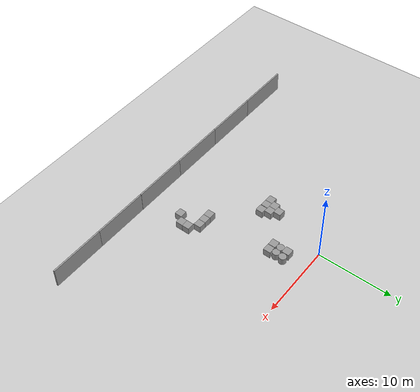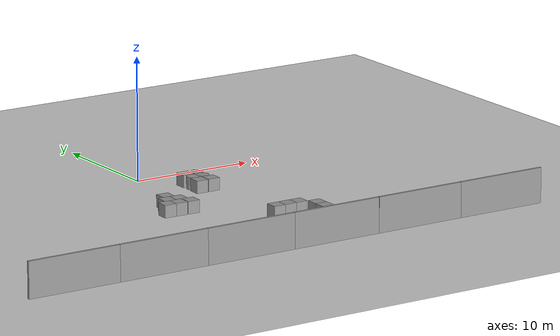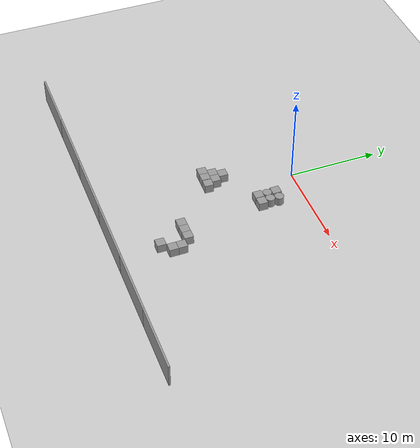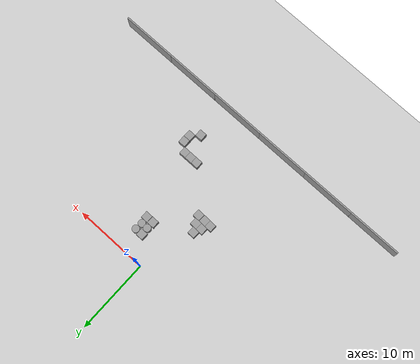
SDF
<sdf version="1.6">
 <world name="default">
  <model name="ground_plane">
   <static>1</static>
   <link name="link">
    <collision name="collision">
     <geometry><plane><normal>0 0 1</normal><size>100 100</size></plane></geometry>
     <surface><friction><ode><mu>100</mu><mu2>50</mu2></ode></friction></surface>
    </collision>
    <visual name="visual">
     <cast_shadows>0</cast_shadows>
     <geometry><plane><normal>0 0 1</normal><size>100 100</size></plane></geometry>
     <material>
      <script><uri>file://media/materials/scripts/gazebo.material</uri><name>Gazebo/Grey</name></script>
     </material>
    </visual>
   </link>
  </model>
  <model name="6walls_0">
   <model name="grey_wall">
    <static>1</static>
    <link name="link">
     <pose>0 0 1.4 0 -0 0</pose>
     <collision name="collision"><geometry><box><size>7.5 0.2 2.8</size></box></geometry></collision>
     <visual name="visual">
      <cast_shadows>0</cast_shadows>
      <geometry><box><size>7.5 0.2 2.8</size></box></geometry>
      <material>
       <script>
        <uri>model://grey_wall/materials/scripts</uri>
        <uri>model://grey_wall/materials/textures</uri>
        <name>vrc/grey_wall</name>
       </script>
      </material>
     </visual>
    </link>
    <pose>-18.6834 0 0 0 -0 0</pose>
   </model>
   <model name="grey_wall_0">
    <static>1</static>
    <link name="link">
     <pose>0 0 1.4 0 -0 0</pose>
     <collision name="collision"><geometry><box><size>7.5 0.2 2.8</size></box></geometry></collision>
     <visual name="visual">
      <cast_shadows>0</cast_shadows>
      <geometry><box><size>7.5 0.2 2.8</size></box></geometry>
      <material>
       <script>
        <uri>model://grey_wall/materials/scripts</uri>
        <uri>model://grey_wall/materials/textures</uri>
        <name>vrc/grey_wall</name>
       </script>
      </material>
     </visual>
    </link>
    <pose>-11.2658 0 0 0 -0 0</pose>
   </model>
   <model name="grey_wall_1">
    <static>1</static>
    <link name="link">
     <pose>0 0 1.4 0 -0 0</pose>
     <collision name="collision"><geometry><box><size>7.5 0.2 2.8</size></box></geometry></collision>
     <visual name="visual">
      <cast_shadows>0</cast_shadows>
      <geometry><box><size>7.5 0.2 2.8</size></box></geometry>
      <material>
       <script>
        <uri>model://grey_wall/materials/scripts</uri>
        <uri>model://grey_wall/materials/textures</uri>
        <name>vrc/grey_wall</name>
       </script>
      </material>
     </visual>
    </link>
    <pose>-3.76669 0 0 0 -0 0</pose>
   </model>
   <model name="grey_wall_2">
    <static>1</static>
    <link name="link">
     <pose>0 0 1.4 0 -0 0</pose>
     <collision name="collision"><geometry><box><size>7.5 0.2 2.8</size></box></geometry></collision>
     <visual name="visual">
      <cast_shadows>0</cast_shadows>
      <geometry><box><size>7.5 0.2 2.8</size></box></geometry>
      <material>
       <script>
        <uri>model://grey_wall/materials/scripts</uri>
        <uri>model://grey_wall/materials/textures</uri>
        <name>vrc/grey_wall</name>
       </script>
      </material>
     </visual>
    </link>
    <pose>3.73421 0 0 0 -0 0</pose>
   </model>
   <model name="grey_wall_3">
    <static>1</static>
    <link name="link">
     <pose>0 0 1.4 0 -0 0</pose>
     <collision name="collision"><geometry><box><size>7.5 0.2 2.8</size></box></geometry></collision>
     <visual name="visual">
      <cast_shadows>0</cast_shadows>
      <geometry><box><size>7.5 0.2 2.8</size></box></geometry>
      <material>
       <script>
        <uri>model://grey_wall/materials/scripts</uri>
        <uri>model://grey_wall/materials/textures</uri>
        <name>vrc/grey_wall</name>
       </script>
      </material>
     </visual>
    </link>
    <pose>11.2475 0 0 0 -0 0</pose>
   </model>
   <model name="grey_wall_4">
    <static>1</static>
    <link name="link">
     <pose>0 0 1.4 0 -0 0</pose>
     <collision name="collision"><geometry><box><size>7.5 0.2 2.8</size></box></geometry></collision>
     <visual name="visual">
      <cast_shadows>0</cast_shadows>
      <geometry><box><size>7.5 0.2 2.8</size></box></geometry>
      <material>
       <script>
        <uri>model://grey_wall/materials/scripts</uri>
        <uri>model://grey_wall/materials/textures</uri>
        <name>vrc/grey_wall</name>
       </script>
      </material>
     </visual>
    </link>
    <pose>18.7342 0 0 0 -0 0</pose>
   </model>
   <static>0</static>
   <pose>0 -22 0 0 -0 0</pose>
  </model>
  <model name="machine3">
   <link name="link_13">
    <pose>-0.503159 1 0 0 -0 0</pose>
    <inertial>
     <mass>1</mass>
     <inertia>
      <ixx>0.166667</ixx>
      <ixy>0</ixy>
      <ixz>0</ixz>
      <iyy>0.166667</iyy>
      <iyz>0</iyz>
      <izz>0.166667</izz>
     </inertia>
    </inertial>
    <visual name="visual">
     <geometry><box><size>1 1 1</size></box></geometry>
     <material>
      <lighting>1</lighting>
      <script><uri>file://media/materials/scripts/gazebo.material</uri><name>Gazebo/Grey</name></script>
      <ambient>0.3 0.3 0.3 1</ambient>
      <diffuse>0.7 0.7 0.7 1</diffuse>
      <specular>0.01 0.01 0.01 1</specular>
      <emissive>0 0 0 1</emissive>
     </material>
    </visual>
    <collision name="collision">
     <geometry><box><size>1 1 1</size></box></geometry>
     <surface>
      <friction>
       <ode><mu>1</mu><mu2>1</mu2><fdir1>0 0 0</fdir1><slip1>0</slip1><slip2>0</slip2></ode>
       <torsional>
        <coefficient>1</coefficient>
        <patch_radius>0</patch_radius>
        <surface_radius>0</surface_radius>
        <use_patch_radius>1</use_patch_radius>
        <ode><slip>0</slip></ode>
       </torsional>
      </friction>
      <bounce><restitution_coefficient>0</restitution_coefficient><threshold>1e+06</threshold></bounce>
      <contact>
       <collide_without_contact>0</collide_without_contact>
       <collide_without_contact_bitmask>1</collide_without_contact_bitmask>
       <collide_bitmask>1</collide_bitmask>
       <ode>
        <soft_cfm>0</soft_cfm>
        <soft_erp>0.2</soft_erp>
        <kp>1e+13</kp>
        <kd>1</kd>
        <max_vel>0.01</max_vel>
        <min_depth>0</min_depth>
       </ode>
       <bullet>
        <split_impulse>1</split_impulse>
        <split_impulse_penetration_threshold>-0.01</split_impulse_penetration_threshold>
        <soft_cfm>0</soft_cfm>
        <soft_erp>0.2</soft_erp>
        <kp>1e+13</kp>
        <kd>1</kd>
       </bullet>
      </contact>
     </surface>
    </collision>
   </link>
   <link name="link_14">
    <pose>0.524915 1 0 0 -0 0</pose>
    <inertial>
     <mass>1</mass>
     <inertia><ixx>0.145833</ixx><ixy>0</ixy><ixz>0</ixz><iyy>0.145833</iyy><iyz>0</iyz><izz>0.125</izz></inertia>
    </inertial>
    <visual name="visual">
     <geometry><cylinder><radius>0.5</radius><length>1</length></cylinder></geometry>
     <material>
      <lighting>1</lighting>
      <script><uri>file://media/materials/scripts/gazebo.material</uri><name>Gazebo/Grey</name></script>
      <ambient>0.3 0.3 0.3 1</ambient>
      <diffuse>0.7 0.7 0.7 1</diffuse>
      <specular>0.01 0.01 0.01 1</specular>
      <emissive>0 0 0 1</emissive>
     </material>
    </visual>
    <collision name="collision">
     <geometry><cylinder><radius>0.5</radius><length>1</length></cylinder></geometry>
     <surface>
      <friction>
       <ode><mu>1</mu><mu2>1</mu2><fdir1>0 0 0</fdir1><slip1>0</slip1><slip2>0</slip2></ode>
       <torsional>
        <coefficient>1</coefficient>
        <patch_radius>0</patch_radius>
        <surface_radius>0</surface_radius>
        <use_patch_radius>1</use_patch_radius>
        <ode><slip>0</slip></ode>
       </torsional>
      </friction>
      <bounce><restitution_coefficient>0</restitution_coefficient><threshold>1e+06</threshold></bounce>
      <contact>
       <collide_without_contact>0</collide_without_contact>
       <collide_without_contact_bitmask>1</collide_without_contact_bitmask>
       <collide_bitmask>1</collide_bitmask>
       <ode>
        <soft_cfm>0</soft_cfm>
        <soft_erp>0.2</soft_erp>
        <kp>1e+13</kp>
        <kd>1</kd>
        <max_vel>0.01</max_vel>
        <min_depth>0</min_depth>
       </ode>
       <bullet>
        <split_impulse>1</split_impulse>
        <split_impulse_penetration_threshold>-0.01</split_impulse_penetration_threshold>
        <soft_cfm>0</soft_cfm>
        <soft_erp>0.2</soft_erp>
        <kp>1e+13</kp>
        <kd>1</kd>
       </bullet>
      </contact>
     </surface>
    </collision>
   </link>
   <link name="link_15">
    <pose>0.434688 0 0 0 -0 0</pose>
    <inertial>
     <mass>1</mass>
     <inertia><ixx>0.145833</ixx><ixy>0</ixy><ixz>0</ixz><iyy>0.145833</iyy><iyz>0</iyz><izz>0.125</izz></inertia>
    </inertial>
    <visual name="visual">
     <geometry><cylinder><radius>0.5</radius><length>1</length></cylinder></geometry>
     <material>
      <lighting>1</lighting>
      <script><uri>file://media/materials/scripts/gazebo.material</uri><name>Gazebo/Grey</name></script>
      <ambient>0.3 0.3 0.3 1</ambient>
      <diffuse>0.7 0.7 0.7 1</diffuse>
      <specular>0.01 0.01 0.01 1</specular>
      <emissive>0 0 0 1</emissive>
     </material>
    </visual>
    <collision name="collision">
     <geometry><cylinder><radius>0.5</radius><length>1</length></cylinder></geometry>
     <surface>
      <friction>
       <ode><mu>1</mu><mu2>1</mu2><fdir1>0 0 0</fdir1><slip1>0</slip1><slip2>0</slip2></ode>
       <torsional>
        <coefficient>1</coefficient>
        <patch_radius>0</patch_radius>
        <surface_radius>0</surface_radius>
        <use_patch_radius>1</use_patch_radius>
        <ode><slip>0</slip></ode>
       </torsional>
      </friction>
      <bounce><restitution_coefficient>0</restitution_coefficient><threshold>1e+06</threshold></bounce>
      <contact>
       <collide_without_contact>0</collide_without_contact>
       <collide_without_contact_bitmask>1</collide_without_contact_bitmask>
       <collide_bitmask>1</collide_bitmask>
       <ode>
        <soft_cfm>0</soft_cfm>
        <soft_erp>0.2</soft_erp>
        <kp>1e+13</kp>
        <kd>1</kd>
        <max_vel>0.01</max_vel>
        <min_depth>0</min_depth>
       </ode>
       <bullet>
        <split_impulse>1</split_impulse>
        <split_impulse_penetration_threshold>-0.01</split_impulse_penetration_threshold>
        <soft_cfm>0</soft_cfm>
        <soft_erp>0.2</soft_erp>
        <kp>1e+13</kp>
        <kd>1</kd>
       </bullet>
      </contact>
     </surface>
    </collision>
   </link>
   <link name="link_16">
    <pose>-0.471074 0 0 0 -0 0</pose>
    <inertial>
     <mass>1</mass>
     <inertia><ixx>0.145833</ixx><ixy>0</ixy><ixz>0</ixz><iyy>0.145833</iyy><iyz>0</iyz><izz>0.125</izz></inertia>
    </inertial>
    <visual name="visual">
     <geometry><cylinder><radius>0.5</radius><length>1</length></cylinder></geometry>
     <material>
      <lighting>1</lighting>
      <script><uri>file://media/materials/scripts/gazebo.material</uri><name>Gazebo/Grey</name></script>
      <ambient>0.3 0.3 0.3 1</ambient>
      <diffuse>0.7 0.7 0.7 1</diffuse>
      <specular>0.01 0.01 0.01 1</specular>
      <emissive>0 0 0 1</emissive>
     </material>
    </visual>
    <collision name="collision">
     <geometry><cylinder><radius>0.5</radius><length>1</length></cylinder></geometry>
     <surface>
      <friction>
       <ode><mu>1</mu><mu2>1</mu2><fdir1>0 0 0</fdir1><slip1>0</slip1><slip2>0</slip2></ode>
       <torsional>
        <coefficient>1</coefficient>
        <patch_radius>0</patch_radius>
        <surface_radius>0</surface_radius>
        <use_patch_radius>1</use_patch_radius>
        <ode><slip>0</slip></ode>
       </torsional>
      </friction>
      <bounce><restitution_coefficient>0</restitution_coefficient><threshold>1e+06</threshold></bounce>
      <contact>
       <collide_without_contact>0</collide_without_contact>
       <collide_without_contact_bitmask>1</collide_without_contact_bitmask>
       <collide_bitmask>1</collide_bitmask>
       <ode>
        <soft_cfm>0</soft_cfm>
        <soft_erp>0.2</soft_erp>
        <kp>1e+13</kp>
        <kd>1</kd>
        <max_vel>0.01</max_vel>
        <min_depth>0</min_depth>
       </ode>
       <bullet>
        <split_impulse>1</split_impulse>
        <split_impulse_penetration_threshold>-0.01</split_impulse_penetration_threshold>
        <soft_cfm>0</soft_cfm>
        <soft_erp>0.2</soft_erp>
        <kp>1e+13</kp>
        <kd>1</kd>
       </bullet>
      </contact>
     </surface>
    </collision>
   </link>
   <link name="link_17">
    <pose>-0.50937 -1 0 0 -0 0</pose>
    <inertial>
     <mass>1</mass>
     <inertia>
      <ixx>0.166667</ixx>
      <ixy>0</ixy>
      <ixz>0</ixz>
      <iyy>0.166667</iyy>
      <iyz>0</iyz>
      <izz>0.166667</izz>
     </inertia>
    </inertial>
    <visual name="visual">
     <geometry><box><size>1 1 1</size></box></geometry>
     <material>
      <lighting>1</lighting>
      <script><uri>file://media/materials/scripts/gazebo.material</uri><name>Gazebo/Grey</name></script>
      <ambient>0.3 0.3 0.3 1</ambient>
      <diffuse>0.7 0.7 0.7 1</diffuse>
      <specular>0.01 0.01 0.01 1</specular>
      <emissive>0 0 0 1</emissive>
     </material>
    </visual>
    <collision name="collision">
     <geometry><box><size>1 1 1</size></box></geometry>
     <surface>
      <friction>
       <ode><mu>1</mu><mu2>1</mu2><fdir1>0 0 0</fdir1><slip1>0</slip1><slip2>0</slip2></ode>
       <torsional>
        <coefficient>1</coefficient>
        <patch_radius>0</patch_radius>
        <surface_radius>0</surface_radius>
        <use_patch_radius>1</use_patch_radius>
        <ode><slip>0</slip></ode>
       </torsional>
      </friction>
      <bounce><restitution_coefficient>0</restitution_coefficient><threshold>1e+06</threshold></bounce>
      <contact>
       <collide_without_contact>0</collide_without_contact>
       <collide_without_contact_bitmask>1</collide_without_contact_bitmask>
       <collide_bitmask>1</collide_bitmask>
       <ode>
        <soft_cfm>0</soft_cfm>
        <soft_erp>0.2</soft_erp>
        <kp>1e+13</kp>
        <kd>1</kd>
        <max_vel>0.01</max_vel>
        <min_depth>0</min_depth>
       </ode>
       <bullet>
        <split_impulse>1</split_impulse>
        <split_impulse_penetration_threshold>-0.01</split_impulse_penetration_threshold>
        <soft_cfm>0</soft_cfm>
        <soft_erp>0.2</soft_erp>
        <kp>1e+13</kp>
        <kd>1</kd>
       </bullet>
      </contact>
     </surface>
    </collision>
   </link>
   <link name="link_18">
    <pose>0.524008 -1 0 0 -0 0</pose>
    <inertial>
     <mass>1</mass>
     <inertia>
      <ixx>0.166667</ixx>
      <ixy>0</ixy>
      <ixz>0</ixz>
      <iyy>0.166667</iyy>
      <iyz>0</iyz>
      <izz>0.166667</izz>
     </inertia>
    </inertial>
    <visual name="visual">
     <geometry><box><size>1 1 1</size></box></geometry>
     <material>
      <lighting>1</lighting>
      <script><uri>file://media/materials/scripts/gazebo.material</uri><name>Gazebo/Grey</name></script>
      <ambient>0.3 0.3 0.3 1</ambient>
      <diffuse>0.7 0.7 0.7 1</diffuse>
      <specular>0.01 0.01 0.01 1</specular>
      <emissive>0 0 0 1</emissive>
     </material>
    </visual>
    <collision name="collision">
     <geometry><box><size>1 1 1</size></box></geometry>
     <surface>
      <friction>
       <ode><mu>1</mu><mu2>1</mu2><fdir1>0 0 0</fdir1><slip1>0</slip1><slip2>0</slip2></ode>
       <torsional>
        <coefficient>1</coefficient>
        <patch_radius>0</patch_radius>
        <surface_radius>0</surface_radius>
        <use_patch_radius>1</use_patch_radius>
        <ode><slip>0</slip></ode>
       </torsional>
      </friction>
      <bounce><restitution_coefficient>0</restitution_coefficient><threshold>1e+06</threshold></bounce>
      <contact>
       <collide_without_contact>0</collide_without_contact>
       <collide_without_contact_bitmask>1</collide_without_contact_bitmask>
       <collide_bitmask>1</collide_bitmask>
       <ode>
        <soft_cfm>0</soft_cfm>
        <soft_erp>0.2</soft_erp>
        <kp>1e+13</kp>
        <kd>1</kd>
        <max_vel>0.01</max_vel>
        <min_depth>0</min_depth>
       </ode>
       <bullet>
        <split_impulse>1</split_impulse>
        <split_impulse_penetration_threshold>-0.01</split_impulse_penetration_threshold>
        <soft_cfm>0</soft_cfm>
        <soft_erp>0.2</soft_erp>
        <kp>1e+13</kp>
        <kd>1</kd>
       </bullet>
      </contact>
     </surface>
    </collision>
   </link>
   <static>0</static>
   <pose>2.98799 -4 0.5 0 -0 0</pose>
  </model>
  <model name="machine1_clone">
   <link name="link_0">
    <pose>0.666667 -1.0048 0 0 -0 0</pose>
    <inertial>
     <mass>1</mass>
     <inertia>
      <ixx>0.166667</ixx>
      <ixy>0</ixy>
      <ixz>0</ixz>
      <iyy>0.166667</iyy>
      <iyz>0</iyz>
      <izz>0.166667</izz>
     </inertia>
    </inertial>
    <visual name="visual">
     <geometry><box><size>1 1 1</size></box></geometry>
     <material>
      <lighting>1</lighting>
      <script><uri>file://media/materials/scripts/gazebo.material</uri><name>Gazebo/Grey</name></script>
      <ambient>0.3 0.3 0.3 1</ambient>
      <diffuse>0.7 0.7 0.7 1</diffuse>
      <specular>0.01 0.01 0.01 1</specular>
      <emissive>0 0 0 1</emissive>
     </material>
    </visual>
    <collision name="collision">
     <geometry><box><size>1 1 1</size></box></geometry>
     <surface>
      <friction>
       <ode><mu>1</mu><mu2>1</mu2><fdir1>0 0 0</fdir1><slip1>0</slip1><slip2>0</slip2></ode>
       <torsional>
        <coefficient>1</coefficient>
        <patch_radius>0</patch_radius>
        <surface_radius>0</surface_radius>
        <use_patch_radius>1</use_patch_radius>
        <ode><slip>0</slip></ode>
       </torsional>
      </friction>
      <bounce><restitution_coefficient>0</restitution_coefficient><threshold>1e+06</threshold></bounce>
      <contact>
       <collide_without_contact>0</collide_without_contact>
       <collide_without_contact_bitmask>1</collide_without_contact_bitmask>
       <collide_bitmask>1</collide_bitmask>
       <ode>
        <soft_cfm>0</soft_cfm>
        <soft_erp>0.2</soft_erp>
        <kp>1e+13</kp>
        <kd>1</kd>
        <max_vel>0.01</max_vel>
        <min_depth>0</min_depth>
       </ode>
       <bullet>
        <split_impulse>1</split_impulse>
        <split_impulse_penetration_threshold>-0.01</split_impulse_penetration_threshold>
        <soft_cfm>0</soft_cfm>
        <soft_erp>0.2</soft_erp>
        <kp>1e+13</kp>
        <kd>1</kd>
       </bullet>
      </contact>
     </surface>
    </collision>
   </link>
   <link name="link_1">
    <pose>0.666667 -0.036067 0 0 -0 0</pose>
    <inertial>
     <mass>1</mass>
     <inertia>
      <ixx>0.166667</ixx>
      <ixy>0</ixy>
      <ixz>0</ixz>
      <iyy>0.166667</iyy>
      <iyz>0</iyz>
      <izz>0.166667</izz>
     </inertia>
    </inertial>
    <visual name="visual">
     <geometry><box><size>1 1 1</size></box></geometry>
     <material>
      <lighting>1</lighting>
      <script><uri>file://media/materials/scripts/gazebo.material</uri><name>Gazebo/Grey</name></script>
      <ambient>0.3 0.3 0.3 1</ambient>
      <diffuse>0.7 0.7 0.7 1</diffuse>
      <specular>0.01 0.01 0.01 1</specular>
      <emissive>0 0 0 1</emissive>
     </material>
    </visual>
    <collision name="collision">
     <geometry><box><size>1 1 1</size></box></geometry>
     <surface>
      <friction>
       <ode><mu>1</mu><mu2>1</mu2><fdir1>0 0 0</fdir1><slip1>0</slip1><slip2>0</slip2></ode>
       <torsional>
        <coefficient>1</coefficient>
        <patch_radius>0</patch_radius>
        <surface_radius>0</surface_radius>
        <use_patch_radius>1</use_patch_radius>
        <ode><slip>0</slip></ode>
       </torsional>
      </friction>
      <bounce><restitution_coefficient>0</restitution_coefficient><threshold>1e+06</threshold></bounce>
      <contact>
       <collide_without_contact>0</collide_without_contact>
       <collide_without_contact_bitmask>1</collide_without_contact_bitmask>
       <collide_bitmask>1</collide_bitmask>
       <ode>
        <soft_cfm>0</soft_cfm>
        <soft_erp>0.2</soft_erp>
        <kp>1e+13</kp>
        <kd>1</kd>
        <max_vel>0.01</max_vel>
        <min_depth>0</min_depth>
       </ode>
       <bullet>
        <split_impulse>1</split_impulse>
        <split_impulse_penetration_threshold>-0.01</split_impulse_penetration_threshold>
        <soft_cfm>0</soft_cfm>
        <soft_erp>0.2</soft_erp>
        <kp>1e+13</kp>
        <kd>1</kd>
       </bullet>
      </contact>
     </surface>
    </collision>
   </link>
   <link name="link_2">
    <pose>0.666667 1.00722 0 0 -0 0</pose>
    <inertial>
     <mass>1</mass>
     <inertia>
      <ixx>0.166667</ixx>
      <ixy>0</ixy>
      <ixz>0</ixz>
      <iyy>0.166667</iyy>
      <iyz>0</iyz>
      <izz>0.166667</izz>
     </inertia>
    </inertial>
    <visual name="visual">
     <geometry><box><size>1 1 1</size></box></geometry>
     <material>
      <lighting>1</lighting>
      <script><uri>file://media/materials/scripts/gazebo.material</uri><name>Gazebo/Grey</name></script>
      <ambient>0.3 0.3 0.3 1</ambient>
      <diffuse>0.7 0.7 0.7 1</diffuse>
      <specular>0.01 0.01 0.01 1</specular>
      <emissive>0 0 0 1</emissive>
     </material>
    </visual>
    <collision name="collision">
     <geometry><box><size>1 1 1</size></box></geometry>
     <surface>
      <friction>
       <ode><mu>1</mu><mu2>1</mu2><fdir1>0 0 0</fdir1><slip1>0</slip1><slip2>0</slip2></ode>
       <torsional>
        <coefficient>1</coefficient>
        <patch_radius>0</patch_radius>
        <surface_radius>0</surface_radius>
        <use_patch_radius>1</use_patch_radius>
        <ode><slip>0</slip></ode>
       </torsional>
      </friction>
      <bounce><restitution_coefficient>0</restitution_coefficient><threshold>1e+06</threshold></bounce>
      <contact>
       <collide_without_contact>0</collide_without_contact>
       <collide_without_contact_bitmask>1</collide_without_contact_bitmask>
       <collide_bitmask>1</collide_bitmask>
       <ode>
        <soft_cfm>0</soft_cfm>
        <soft_erp>0.2</soft_erp>
        <kp>1e+13</kp>
        <kd>1</kd>
        <max_vel>0.01</max_vel>
        <min_depth>0</min_depth>
       </ode>
       <bullet>
        <split_impulse>1</split_impulse>
        <split_impulse_penetration_threshold>-0.01</split_impulse_penetration_threshold>
        <soft_cfm>0</soft_cfm>
        <soft_erp>0.2</soft_erp>
        <kp>1e+13</kp>
        <kd>1</kd>
       </bullet>
      </contact>
     </surface>
    </collision>
   </link>
   <link name="link_3">
    <pose>-0.333333 0.53488 0 0 -0 0</pose>
    <inertial>
     <mass>1</mass>
     <inertia>
      <ixx>0.166667</ixx>
      <ixy>0</ixy>
      <ixz>0</ixz>
      <iyy>0.166667</iyy>
      <iyz>0</iyz>
      <izz>0.166667</izz>
     </inertia>
    </inertial>
    <visual name="visual">
     <geometry><box><size>1 1 1</size></box></geometry>
     <material>
      <lighting>1</lighting>
      <script><uri>file://media/materials/scripts/gazebo.material</uri><name>Gazebo/Grey</name></script>
      <ambient>0.3 0.3 0.3 1</ambient>
      <diffuse>0.7 0.7 0.7 1</diffuse>
      <specular>0.01 0.01 0.01 1</specular>
      <emissive>0 0 0 1</emissive>
     </material>
    </visual>
    <collision name="collision">
     <geometry><box><size>1 1 1</size></box></geometry>
     <surface>
      <friction>
       <ode><mu>1</mu><mu2>1</mu2><fdir1>0 0 0</fdir1><slip1>0</slip1><slip2>0</slip2></ode>
       <torsional>
        <coefficient>1</coefficient>
        <patch_radius>0</patch_radius>
        <surface_radius>0</surface_radius>
        <use_patch_radius>1</use_patch_radius>
        <ode><slip>0</slip></ode>
       </torsional>
      </friction>
      <bounce><restitution_coefficient>0</restitution_coefficient><threshold>1e+06</threshold></bounce>
      <contact>
       <collide_without_contact>0</collide_without_contact>
       <collide_without_contact_bitmask>1</collide_without_contact_bitmask>
       <collide_bitmask>1</collide_bitmask>
       <ode>
        <soft_cfm>0</soft_cfm>
        <soft_erp>0.2</soft_erp>
        <kp>1e+13</kp>
        <kd>1</kd>
        <max_vel>0.01</max_vel>
        <min_depth>0</min_depth>
       </ode>
       <bullet>
        <split_impulse>1</split_impulse>
        <split_impulse_penetration_threshold>-0.01</split_impulse_penetration_threshold>
        <soft_cfm>0</soft_cfm>
        <soft_erp>0.2</soft_erp>
        <kp>1e+13</kp>
        <kd>1</kd>
       </bullet>
      </contact>
     </surface>
    </collision>
   </link>
   <link name="link_4">
    <pose>-0.333333 -0.46512 0 0 -0 0</pose>
    <inertial>
     <mass>1</mass>
     <inertia>
      <ixx>0.166667</ixx>
      <ixy>0</ixy>
      <ixz>0</ixz>
      <iyy>0.166667</iyy>
      <iyz>0</iyz>
      <izz>0.166667</izz>
     </inertia>
    </inertial>
    <visual name="visual">
     <geometry><box><size>1 1 1</size></box></geometry>
     <material>
      <lighting>1</lighting>
      <script><uri>file://media/materials/scripts/gazebo.material</uri><name>Gazebo/Grey</name></script>
      <ambient>0.3 0.3 0.3 1</ambient>
      <diffuse>0.7 0.7 0.7 1</diffuse>
      <specular>0.01 0.01 0.01 1</specular>
      <emissive>0 0 0 1</emissive>
     </material>
    </visual>
    <collision name="collision">
     <geometry><box><size>1 1 1</size></box></geometry>
     <surface>
      <friction>
       <ode><mu>1</mu><mu2>1</mu2><fdir1>0 0 0</fdir1><slip1>0</slip1><slip2>0</slip2></ode>
       <torsional>
        <coefficient>1</coefficient>
        <patch_radius>0</patch_radius>
        <surface_radius>0</surface_radius>
        <use_patch_radius>1</use_patch_radius>
        <ode><slip>0</slip></ode>
       </torsional>
      </friction>
      <bounce><restitution_coefficient>0</restitution_coefficient><threshold>1e+06</threshold></bounce>
      <contact>
       <collide_without_contact>0</collide_without_contact>
       <collide_without_contact_bitmask>1</collide_without_contact_bitmask>
       <collide_bitmask>1</collide_bitmask>
       <ode>
        <soft_cfm>0</soft_cfm>
        <soft_erp>0.2</soft_erp>
        <kp>1e+13</kp>
        <kd>1</kd>
        <max_vel>0.01</max_vel>
        <min_depth>0</min_depth>
       </ode>
       <bullet>
        <split_impulse>1</split_impulse>
        <split_impulse_penetration_threshold>-0.01</split_impulse_penetration_threshold>
        <soft_cfm>0</soft_cfm>
        <soft_erp>0.2</soft_erp>
        <kp>1e+13</kp>
        <kd>1</kd>
       </bullet>
      </contact>
     </surface>
    </collision>
   </link>
   <link name="link_5">
    <pose>-1.33333 -0.036128 0 0 -0 0</pose>
    <inertial>
     <mass>1</mass>
     <inertia>
      <ixx>0.166667</ixx>
      <ixy>0</ixy>
      <ixz>0</ixz>
      <iyy>0.166667</iyy>
      <iyz>0</iyz>
      <izz>0.166667</izz>
     </inertia>
    </inertial>
    <visual name="visual">
     <geometry><box><size>1 1 1</size></box></geometry>
     <material>
      <lighting>1</lighting>
      <script><uri>file://media/materials/scripts/gazebo.material</uri><name>Gazebo/Grey</name></script>
      <ambient>0.3 0.3 0.3 1</ambient>
      <diffuse>0.7 0.7 0.7 1</diffuse>
      <specular>0.01 0.01 0.01 1</specular>
      <emissive>0 0 0 1</emissive>
     </material>
    </visual>
    <collision name="collision">
     <geometry><box><size>1 1 1</size></box></geometry>
     <surface>
      <friction>
       <ode><mu>1</mu><mu2>1</mu2><fdir1>0 0 0</fdir1><slip1>0</slip1><slip2>0</slip2></ode>
       <torsional>
        <coefficient>1</coefficient>
        <patch_radius>0</patch_radius>
        <surface_radius>0</surface_radius>
        <use_patch_radius>1</use_patch_radius>
        <ode><slip>0</slip></ode>
       </torsional>
      </friction>
      <bounce><restitution_coefficient>0</restitution_coefficient><threshold>1e+06</threshold></bounce>
      <contact>
       <collide_without_contact>0</collide_without_contact>
       <collide_without_contact_bitmask>1</collide_without_contact_bitmask>
       <collide_bitmask>1</collide_bitmask>
       <ode>
        <soft_cfm>0</soft_cfm>
        <soft_erp>0.2</soft_erp>
        <kp>1e+13</kp>
        <kd>1</kd>
        <max_vel>0.01</max_vel>
        <min_depth>0</min_depth>
       </ode>
       <bullet>
        <split_impulse>1</split_impulse>
        <split_impulse_penetration_threshold>-0.01</split_impulse_penetration_threshold>
        <soft_cfm>0</soft_cfm>
        <soft_erp>0.2</soft_erp>
        <kp>1e+13</kp>
        <kd>1</kd>
       </bullet>
      </contact>
     </surface>
    </collision>
   </link>
   <static>0</static>
   <pose>-2.10124 -8.76452 0.5 0 0 -1.6</pose>
  </model>
  <model name="machin4_0">
   <link name="link_19">
    <pose>0.127295 1 0 0 -0 0</pose>
    <inertial>
     <mass>1</mass>
     <inertia>
      <ixx>0.166667</ixx>
      <ixy>0</ixy>
      <ixz>0</ixz>
      <iyy>0.166667</iyy>
      <iyz>0</iyz>
      <izz>0.166667</izz>
     </inertia>
    </inertial>
    <visual name="visual">
     <geometry><box><size>1 1 1</size></box></geometry>
     <material>
      <lighting>1</lighting>
      <script><uri>file://media/materials/scripts/gazebo.material</uri><name>Gazebo/Grey</name></script>
      <ambient>0.3 0.3 0.3 1</ambient>
      <diffuse>0.7 0.7 0.7 1</diffuse>
      <specular>0.01 0.01 0.01 1</specular>
      <emissive>0 0 0 1</emissive>
     </material>
    </visual>
    <collision name="collision">
     <geometry><box><size>1 1 1</size></box></geometry>
     <surface>
      <friction>
       <ode><mu>1</mu><mu2>1</mu2><fdir1>0 0 0</fdir1><slip1>0</slip1><slip2>0</slip2></ode>
       <torsional>
        <coefficient>1</coefficient>
        <patch_radius>0</patch_radius>
        <surface_radius>0</surface_radius>
        <use_patch_radius>1</use_patch_radius>
        <ode><slip>0</slip></ode>
       </torsional>
      </friction>
      <bounce><restitution_coefficient>0</restitution_coefficient><threshold>1e+06</threshold></bounce>
      <contact>
       <collide_without_contact>0</collide_without_contact>
       <collide_without_contact_bitmask>1</collide_without_contact_bitmask>
       <collide_bitmask>1</collide_bitmask>
       <ode>
        <soft_cfm>0</soft_cfm>
        <soft_erp>0.2</soft_erp>
        <kp>1e+13</kp>
        <kd>1</kd>
        <max_vel>0.01</max_vel>
        <min_depth>0</min_depth>
       </ode>
       <bullet>
        <split_impulse>1</split_impulse>
        <split_impulse_penetration_threshold>-0.01</split_impulse_penetration_threshold>
        <soft_cfm>0</soft_cfm>
        <soft_erp>0.2</soft_erp>
        <kp>1e+13</kp>
        <kd>1</kd>
       </bullet>
      </contact>
     </surface>
    </collision>
   </link>
   <link name="link_20">
    <pose>-0.843938 1 0 0 -0 0</pose>
    <inertial>
     <mass>1</mass>
     <inertia>
      <ixx>0.166667</ixx>
      <ixy>0</ixy>
      <ixz>0</ixz>
      <iyy>0.166667</iyy>
      <iyz>0</iyz>
      <izz>0.166667</izz>
     </inertia>
    </inertial>
    <visual name="visual">
     <geometry><box><size>1 1 1</size></box></geometry>
     <material>
      <lighting>1</lighting>
      <script><uri>file://media/materials/scripts/gazebo.material</uri><name>Gazebo/Grey</name></script>
      <ambient>0.3 0.3 0.3 1</ambient>
      <diffuse>0.7 0.7 0.7 1</diffuse>
      <specular>0.01 0.01 0.01 1</specular>
      <emissive>0 0 0 1</emissive>
     </material>
    </visual>
    <collision name="collision">
     <geometry><box><size>1 1 1</size></box></geometry>
     <surface>
      <friction>
       <ode><mu>1</mu><mu2>1</mu2><fdir1>0 0 0</fdir1><slip1>0</slip1><slip2>0</slip2></ode>
       <torsional>
        <coefficient>1</coefficient>
        <patch_radius>0</patch_radius>
        <surface_radius>0</surface_radius>
        <use_patch_radius>1</use_patch_radius>
        <ode><slip>0</slip></ode>
       </torsional>
      </friction>
      <bounce><restitution_coefficient>0</restitution_coefficient><threshold>1e+06</threshold></bounce>
      <contact>
       <collide_without_contact>0</collide_without_contact>
       <collide_without_contact_bitmask>1</collide_without_contact_bitmask>
       <collide_bitmask>1</collide_bitmask>
       <ode>
        <soft_cfm>0</soft_cfm>
        <soft_erp>0.2</soft_erp>
        <kp>1e+13</kp>
        <kd>1</kd>
        <max_vel>0.01</max_vel>
        <min_depth>0</min_depth>
       </ode>
       <bullet>
        <split_impulse>1</split_impulse>
        <split_impulse_penetration_threshold>-0.01</split_impulse_penetration_threshold>
        <soft_cfm>0</soft_cfm>
        <soft_erp>0.2</soft_erp>
        <kp>1e+13</kp>
        <kd>1</kd>
       </bullet>
      </contact>
     </surface>
    </collision>
   </link>
   <link name="link_21">
    <pose>1.19236 0 0 0 -0 0</pose>
    <inertial>
     <mass>1</mass>
     <inertia>
      <ixx>0.166667</ixx>
      <ixy>0</ixy>
      <ixz>0</ixz>
      <iyy>0.166667</iyy>
      <iyz>0</iyz>
      <izz>0.166667</izz>
     </inertia>
    </inertial>
    <visual name="visual">
     <geometry><box><size>1 1 1</size></box></geometry>
     <material>
      <lighting>1</lighting>
      <script><uri>file://media/materials/scripts/gazebo.material</uri><name>Gazebo/Grey</name></script>
      <ambient>0.3 0.3 0.3 1</ambient>
      <diffuse>0.7 0.7 0.7 1</diffuse>
      <specular>0.01 0.01 0.01 1</specular>
      <emissive>0 0 0 1</emissive>
     </material>
    </visual>
    <collision name="collision">
     <geometry><box><size>1 1 1</size></box></geometry>
     <surface>
      <friction>
       <ode><mu>1</mu><mu2>1</mu2><fdir1>0 0 0</fdir1><slip1>0</slip1><slip2>0</slip2></ode>
       <torsional>
        <coefficient>1</coefficient>
        <patch_radius>0</patch_radius>
        <surface_radius>0</surface_radius>
        <use_patch_radius>1</use_patch_radius>
        <ode><slip>0</slip></ode>
       </torsional>
      </friction>
      <bounce><restitution_coefficient>0</restitution_coefficient><threshold>1e+06</threshold></bounce>
      <contact>
       <collide_without_contact>0</collide_without_contact>
       <collide_without_contact_bitmask>1</collide_without_contact_bitmask>
       <collide_bitmask>1</collide_bitmask>
       <ode>
        <soft_cfm>0</soft_cfm>
        <soft_erp>0.2</soft_erp>
        <kp>1e+13</kp>
        <kd>1</kd>
        <max_vel>0.01</max_vel>
        <min_depth>0</min_depth>
       </ode>
       <bullet>
        <split_impulse>1</split_impulse>
        <split_impulse_penetration_threshold>-0.01</split_impulse_penetration_threshold>
        <soft_cfm>0</soft_cfm>
        <soft_erp>0.2</soft_erp>
        <kp>1e+13</kp>
        <kd>1</kd>
       </bullet>
      </contact>
     </surface>
    </collision>
   </link>
   <link name="link_22">
    <pose>1.19278 -1 0 0 -0 0</pose>
    <inertial>
     <mass>1</mass>
     <inertia>
      <ixx>0.166667</ixx>
      <ixy>0</ixy>
      <ixz>0</ixz>
      <iyy>0.166667</iyy>
      <iyz>0</iyz>
      <izz>0.166667</izz>
     </inertia>
    </inertial>
    <visual name="visual">
     <geometry><box><size>1 1 1</size></box></geometry>
     <material>
      <lighting>1</lighting>
      <script><uri>file://media/materials/scripts/gazebo.material</uri><name>Gazebo/Grey</name></script>
      <ambient>0.3 0.3 0.3 1</ambient>
      <diffuse>0.7 0.7 0.7 1</diffuse>
      <specular>0.01 0.01 0.01 1</specular>
      <emissive>0 0 0 1</emissive>
     </material>
    </visual>
    <collision name="collision">
     <geometry><box><size>1 1 1</size></box></geometry>
     <surface>
      <friction>
       <ode><mu>1</mu><mu2>1</mu2><fdir1>0 0 0</fdir1><slip1>0</slip1><slip2>0</slip2></ode>
       <torsional>
        <coefficient>1</coefficient>
        <patch_radius>0</patch_radius>
        <surface_radius>0</surface_radius>
        <use_patch_radius>1</use_patch_radius>
        <ode><slip>0</slip></ode>
       </torsional>
      </friction>
      <bounce><restitution_coefficient>0</restitution_coefficient><threshold>1e+06</threshold></bounce>
      <contact>
       <collide_without_contact>0</collide_without_contact>
       <collide_without_contact_bitmask>1</collide_without_contact_bitmask>
       <collide_bitmask>1</collide_bitmask>
       <ode>
        <soft_cfm>0</soft_cfm>
        <soft_erp>0.2</soft_erp>
        <kp>1e+13</kp>
        <kd>1</kd>
        <max_vel>0.01</max_vel>
        <min_depth>0</min_depth>
       </ode>
       <bullet>
        <split_impulse>1</split_impulse>
        <split_impulse_penetration_threshold>-0.01</split_impulse_penetration_threshold>
        <soft_cfm>0</soft_cfm>
        <soft_erp>0.2</soft_erp>
        <kp>1e+13</kp>
        <kd>1</kd>
       </bullet>
      </contact>
     </surface>
    </collision>
   </link>
   <link name="link_23">
    <pose>0.174071 -2 0 0 -0 0</pose>
    <inertial>
     <mass>1</mass>
     <inertia>
      <ixx>0.166667</ixx>
      <ixy>0</ixy>
      <ixz>0</ixz>
      <iyy>0.166667</iyy>
      <iyz>0</iyz>
      <izz>0.166667</izz>
     </inertia>
    </inertial>
    <visual name="visual">
     <geometry><box><size>1 1 1</size></box></geometry>
     <material>
      <lighting>1</lighting>
      <script><uri>file://media/materials/scripts/gazebo.material</uri><name>Gazebo/Grey</name></script>
      <ambient>0.3 0.3 0.3 1</ambient>
      <diffuse>0.7 0.7 0.7 1</diffuse>
      <specular>0.01 0.01 0.01 1</specular>
      <emissive>0 0 0 1</emissive>
     </material>
    </visual>
    <collision name="collision">
     <geometry><box><size>1 1 1</size></box></geometry>
     <surface>
      <friction>
       <ode><mu>1</mu><mu2>1</mu2><fdir1>0 0 0</fdir1><slip1>0</slip1><slip2>0</slip2></ode>
       <torsional>
        <coefficient>1</coefficient>
        <patch_radius>0</patch_radius>
        <surface_radius>0</surface_radius>
        <use_patch_radius>1</use_patch_radius>
        <ode><slip>0</slip></ode>
       </torsional>
      </friction>
      <bounce><restitution_coefficient>0</restitution_coefficient><threshold>1e+06</threshold></bounce>
      <contact>
       <collide_without_contact>0</collide_without_contact>
       <collide_without_contact_bitmask>1</collide_without_contact_bitmask>
       <collide_bitmask>1</collide_bitmask>
       <ode>
        <soft_cfm>0</soft_cfm>
        <soft_erp>0.2</soft_erp>
        <kp>1e+13</kp>
        <kd>1</kd>
        <max_vel>0.01</max_vel>
        <min_depth>0</min_depth>
       </ode>
       <bullet>
        <split_impulse>1</split_impulse>
        <split_impulse_penetration_threshold>-0.01</split_impulse_penetration_threshold>
        <soft_cfm>0</soft_cfm>
        <soft_erp>0.2</soft_erp>
        <kp>1e+13</kp>
        <kd>1</kd>
       </bullet>
      </contact>
     </surface>
    </collision>
   </link>
   <link name="link_24">
    <pose>-1.84258 1 0 0 -0 0</pose>
    <inertial>
     <mass>1</mass>
     <inertia>
      <ixx>0.166667</ixx>
      <ixy>0</ixy>
      <ixz>0</ixz>
      <iyy>0.166667</iyy>
      <iyz>0</iyz>
      <izz>0.166667</izz>
     </inertia>
    </inertial>
    <visual name="visual">
     <geometry><box><size>1 1 1</size></box></geometry>
     <material>
      <lighting>1</lighting>
      <script><uri>file://media/materials/scripts/gazebo.material</uri><name>Gazebo/Grey</name></script>
      <ambient>0.3 0.3 0.3 1</ambient>
      <diffuse>0.7 0.7 0.7 1</diffuse>
      <specular>0.01 0.01 0.01 1</specular>
      <emissive>0 0 0 1</emissive>
     </material>
    </visual>
    <collision name="collision">
     <geometry><box><size>1 1 1</size></box></geometry>
     <surface>
      <friction>
       <ode><mu>1</mu><mu2>1</mu2><fdir1>0 0 0</fdir1><slip1>0</slip1><slip2>0</slip2></ode>
       <torsional>
        <coefficient>1</coefficient>
        <patch_radius>0</patch_radius>
        <surface_radius>0</surface_radius>
        <use_patch_radius>1</use_patch_radius>
        <ode><slip>0</slip></ode>
       </torsional>
      </friction>
      <bounce><restitution_coefficient>0</restitution_coefficient><threshold>1e+06</threshold></bounce>
      <contact>
       <collide_without_contact>0</collide_without_contact>
       <collide_without_contact_bitmask>1</collide_without_contact_bitmask>
       <collide_bitmask>1</collide_bitmask>
       <ode>
        <soft_cfm>0</soft_cfm>
        <soft_erp>0.2</soft_erp>
        <kp>1e+13</kp>
        <kd>1</kd>
        <max_vel>0.01</max_vel>
        <min_depth>0</min_depth>
       </ode>
       <bullet>
        <split_impulse>1</split_impulse>
        <split_impulse_penetration_threshold>-0.01</split_impulse_penetration_threshold>
        <soft_cfm>0</soft_cfm>
        <soft_erp>0.2</soft_erp>
        <kp>1e+13</kp>
        <kd>1</kd>
       </bullet>
      </contact>
     </surface>
    </collision>
   </link>
   <static>0</static>
   <pose>5.40309 -15.1762 0.5 0 -0 0</pose>
  </model>
 </world>
</sdf>
